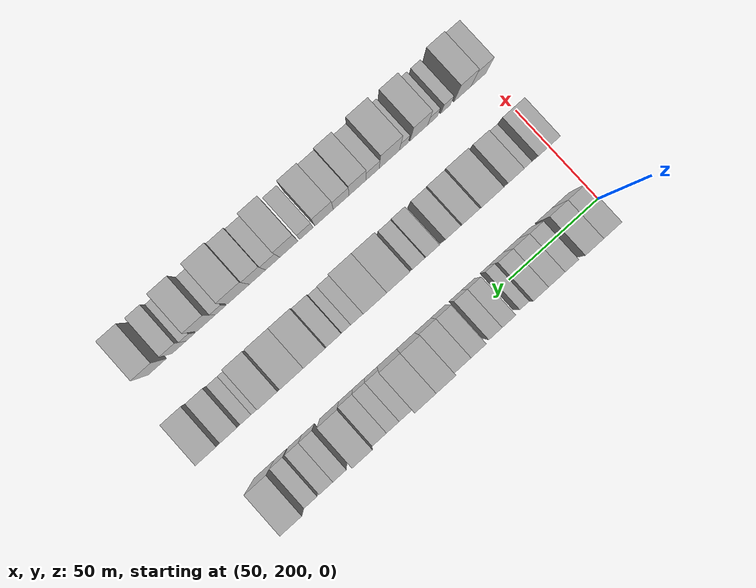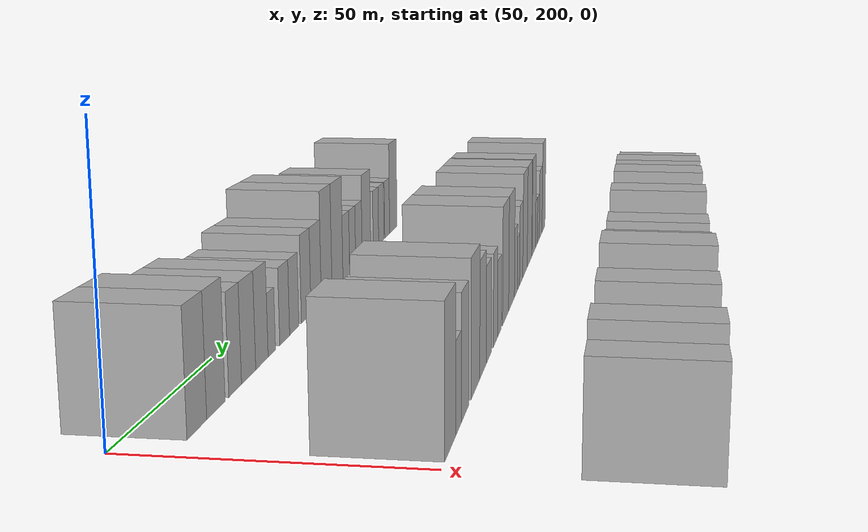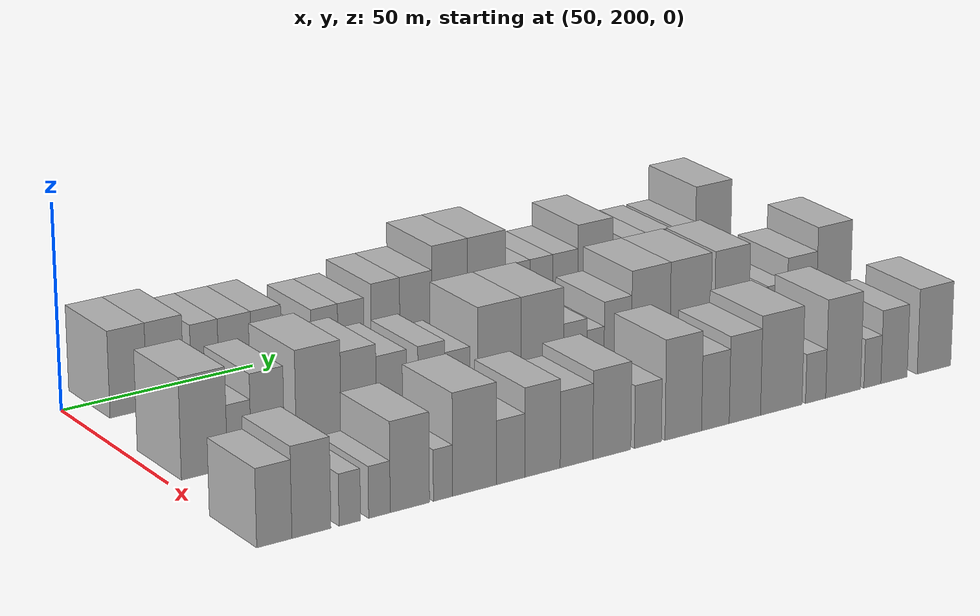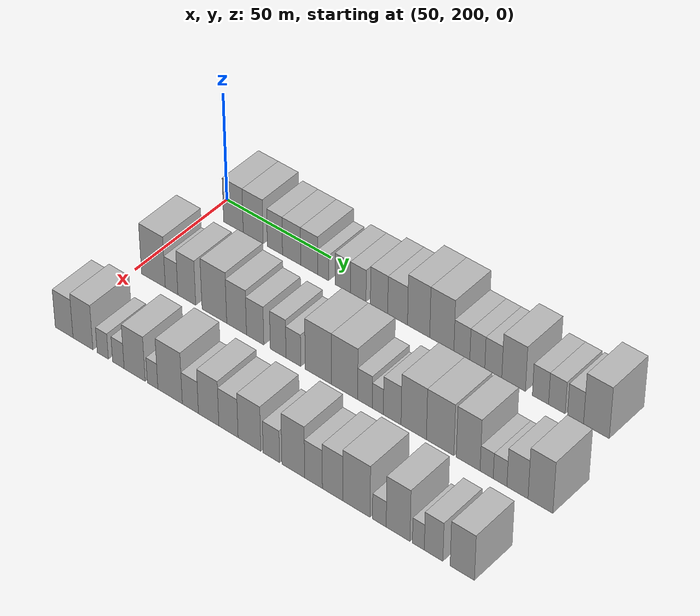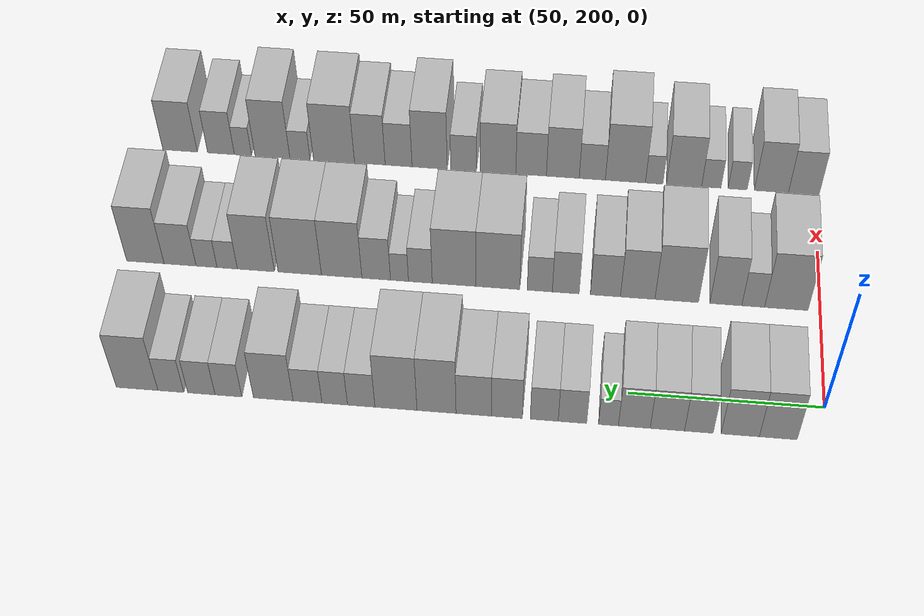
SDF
<sdf version="1.6">
 <world name="default">
  <model name="building_57">
   <static>1</static>
   <pose>50.0000 211.8894 0 0.000000 0.000000 0.000000</pose>
   <link name="link">
    <pose>0 0 10.50 0 0 0</pose>
    <collision name="collision"><geometry><box><size>20.0000 9.4863 21.0000</size></box></geometry></collision>
    <visual name="visual">
     <cast_shadows>0</cast_shadows>
     <geometry><box><size>20.0000 9.4863 21.0000</size></box></geometry>
     <material>
      <script>
       <uri>model://HANNAS_wall/materials/scripts</uri>
       <uri>model://HANNAS_wall/materials/textures</uri>
       <name>vrc/HANNAS_wall</name>
      </script>
     </material>
    </visual>
   </link>
  </model>
  <model name="building_58">
   <static>1</static>
   <pose>50.0000 221.4243 0 0.000000 0.000000 0.000000</pose>
   <link name="link">
    <pose>0 0 10.50 0 0 0</pose>
    <collision name="collision"><geometry><box><size>20.0000 9.5835 21.0000</size></box></geometry></collision>
    <visual name="visual">
     <cast_shadows>0</cast_shadows>
     <geometry><box><size>20.0000 9.5835 21.0000</size></box></geometry>
     <material>
      <script>
       <uri>model://HANNAS_wall/materials/scripts</uri>
       <uri>model://HANNAS_wall/materials/textures</uri>
       <name>vrc/HANNAS_wall</name>
      </script>
     </material>
    </visual>
   </link>
  </model>
  <model name="building_59">
   <static>1</static>
   <pose>50.0000 231.8241 0 0.000000 0.000000 0.000000</pose>
   <link name="link">
    <pose>0 0 9.00 0 0 0</pose>
    <collision name="collision"><geometry><box><size>20.0000 7.2160 18.0000</size></box></geometry></collision>
    <visual name="visual">
     <cast_shadows>0</cast_shadows>
     <geometry><box><size>20.0000 7.2160 18.0000</size></box></geometry>
     <material>
      <script>
       <uri>model://HANNAS_wall/materials/scripts</uri>
       <uri>model://HANNAS_wall/materials/textures</uri>
       <name>vrc/HANNAS_wall</name>
      </script>
     </material>
    </visual>
   </link>
  </model>
  <model name="building_60">
   <static>1</static>
   <pose>50.0000 239.7580 0 0.000000 0.000000 0.000000</pose>
   <link name="link">
    <pose>0 0 9.00 0 0 0</pose>
    <collision name="collision"><geometry><box><size>20.0000 8.6519 18.0000</size></box></geometry></collision>
    <visual name="visual">
     <cast_shadows>0</cast_shadows>
     <geometry><box><size>20.0000 8.6519 18.0000</size></box></geometry>
     <material>
      <script>
       <uri>model://HANNAS_wall/materials/scripts</uri>
       <uri>model://HANNAS_wall/materials/textures</uri>
       <name>vrc/HANNAS_wall</name>
      </script>
     </material>
    </visual>
   </link>
  </model>
  <model name="building_61">
   <static>1</static>
   <pose>50.0000 248.1041 0 0.000000 0.000000 0.000000</pose>
   <link name="link">
    <pose>0 0 9.00 0 0 0</pose>
    <collision name="collision"><geometry><box><size>20.0000 8.0402 18.0000</size></box></geometry></collision>
    <visual name="visual">
     <cast_shadows>0</cast_shadows>
     <geometry><box><size>20.0000 8.0402 18.0000</size></box></geometry>
     <material>
      <script>
       <uri>model://HANNAS_wall/materials/scripts</uri>
       <uri>model://HANNAS_wall/materials/textures</uri>
       <name>vrc/HANNAS_wall</name>
      </script>
     </material>
    </visual>
   </link>
  </model>
  <model name="building_62">
   <static>1</static>
   <pose>50.0000 254.6286 0 0.000000 0.000000 0.000000</pose>
   <link name="link">
    <pose>0 0 6.00 0 0 0</pose>
    <collision name="collision"><geometry><box><size>20.0000 5.0088 12.0000</size></box></geometry></collision>
    <visual name="visual">
     <cast_shadows>0</cast_shadows>
     <geometry><box><size>20.0000 5.0088 12.0000</size></box></geometry>
     <material>
      <script>
       <uri>model://HANNAS_wall/materials/scripts</uri>
       <uri>model://HANNAS_wall/materials/textures</uri>
       <name>vrc/HANNAS_wall</name>
      </script>
     </material>
    </visual>
   </link>
  </model>
  <model name="building_63">
   <static>1</static>
   <pose>50.0000 263.7441 0 0.000000 0.000000 0.000000</pose>
   <link name="link">
    <pose>0 0 7.50 0 0 0</pose>
    <collision name="collision"><geometry><box><size>20.0000 7.2222 15.0000</size></box></geometry></collision>
    <visual name="visual">
     <cast_shadows>0</cast_shadows>
     <geometry><box><size>20.0000 7.2222 15.0000</size></box></geometry>
     <material>
      <script>
       <uri>model://HANNAS_wall/materials/scripts</uri>
       <uri>model://HANNAS_wall/materials/textures</uri>
       <name>vrc/HANNAS_wall</name>
      </script>
     </material>
    </visual>
   </link>
  </model>
  <model name="building_64">
   <static>1</static>
   <pose>50.0000 270.9113 0 0.000000 0.000000 0.000000</pose>
   <link name="link">
    <pose>0 0 7.50 0 0 0</pose>
    <collision name="collision"><geometry><box><size>20.0000 7.1123 15.0000</size></box></geometry></collision>
    <visual name="visual">
     <cast_shadows>0</cast_shadows>
     <geometry><box><size>20.0000 7.1123 15.0000</size></box></geometry>
     <material>
      <script>
       <uri>model://HANNAS_wall/materials/scripts</uri>
       <uri>model://HANNAS_wall/materials/textures</uri>
       <name>vrc/HANNAS_wall</name>
      </script>
     </material>
    </visual>
   </link>
  </model>
  <model name="building_65">
   <static>1</static>
   <pose>50.0000 280.4324 0 0.000000 0.000000 0.000000</pose>
   <link name="link">
    <pose>0 0 9.00 0 0 0</pose>
    <collision name="collision"><geometry><box><size>20.0000 7.9298 18.0000</size></box></geometry></collision>
    <visual name="visual">
     <cast_shadows>0</cast_shadows>
     <geometry><box><size>20.0000 7.9298 18.0000</size></box></geometry>
     <material>
      <script>
       <uri>model://HANNAS_wall/materials/scripts</uri>
       <uri>model://HANNAS_wall/materials/textures</uri>
       <name>vrc/HANNAS_wall</name>
      </script>
     </material>
    </visual>
   </link>
  </model>
  <model name="building_66">
   <static>1</static>
   <pose>50.0000 288.8863 0 0.000000 0.000000 0.000000</pose>
   <link name="link">
    <pose>0 0 9.00 0 0 0</pose>
    <collision name="collision"><geometry><box><size>20.0000 8.9780 18.0000</size></box></geometry></collision>
    <visual name="visual">
     <cast_shadows>0</cast_shadows>
     <geometry><box><size>20.0000 8.9780 18.0000</size></box></geometry>
     <material>
      <script>
       <uri>model://HANNAS_wall/materials/scripts</uri>
       <uri>model://HANNAS_wall/materials/textures</uri>
       <name>vrc/HANNAS_wall</name>
      </script>
     </material>
    </visual>
   </link>
  </model>
  <model name="building_67">
   <static>1</static>
   <pose>50.0000 298.3716 0 0.000000 0.000000 0.000000</pose>
   <link name="link">
    <pose>0 0 12.00 0 0 0</pose>
    <collision name="collision"><geometry><box><size>20.0000 9.9928 24.0000</size></box></geometry></collision>
    <visual name="visual">
     <cast_shadows>0</cast_shadows>
     <geometry><box><size>20.0000 9.9928 24.0000</size></box></geometry>
     <material>
      <script>
       <uri>model://HANNAS_wall/materials/scripts</uri>
       <uri>model://HANNAS_wall/materials/textures</uri>
       <name>vrc/HANNAS_wall</name>
      </script>
     </material>
    </visual>
   </link>
  </model>
  <model name="building_68">
   <static>1</static>
   <pose>50.0000 308.7634 0 0.000000 0.000000 0.000000</pose>
   <link name="link">
    <pose>0 0 12.00 0 0 0</pose>
    <collision name="collision"><geometry><box><size>20.0000 10.7906 24.0000</size></box></geometry></collision>
    <visual name="visual">
     <cast_shadows>0</cast_shadows>
     <geometry><box><size>20.0000 10.7906 24.0000</size></box></geometry>
     <material>
      <script>
       <uri>model://HANNAS_wall/materials/scripts</uri>
       <uri>model://HANNAS_wall/materials/textures</uri>
       <name>vrc/HANNAS_wall</name>
      </script>
     </material>
    </visual>
   </link>
  </model>
  <model name="building_69">
   <static>1</static>
   <pose>50.0000 317.6834 0 0.000000 0.000000 0.000000</pose>
   <link name="link">
    <pose>0 0 7.50 0 0 0</pose>
    <collision name="collision"><geometry><box><size>20.0000 7.0496 15.0000</size></box></geometry></collision>
    <visual name="visual">
     <cast_shadows>0</cast_shadows>
     <geometry><box><size>20.0000 7.0496 15.0000</size></box></geometry>
     <material>
      <script>
       <uri>model://HANNAS_wall/materials/scripts</uri>
       <uri>model://HANNAS_wall/materials/textures</uri>
       <name>vrc/HANNAS_wall</name>
      </script>
     </material>
    </visual>
   </link>
  </model>
  <model name="building_70">
   <static>1</static>
   <pose>50.0000 324.4984 0 0.000000 0.000000 0.000000</pose>
   <link name="link">
    <pose>0 0 7.50 0 0 0</pose>
    <collision name="collision"><geometry><box><size>20.0000 6.5803 15.0000</size></box></geometry></collision>
    <visual name="visual">
     <cast_shadows>0</cast_shadows>
     <geometry><box><size>20.0000 6.5803 15.0000</size></box></geometry>
     <material>
      <script>
       <uri>model://HANNAS_wall/materials/scripts</uri>
       <uri>model://HANNAS_wall/materials/textures</uri>
       <name>vrc/HANNAS_wall</name>
      </script>
     </material>
    </visual>
   </link>
  </model>
  <model name="building_71">
   <static>1</static>
   <pose>50.0000 331.5047 0 0.000000 0.000000 0.000000</pose>
   <link name="link">
    <pose>0 0 7.50 0 0 0</pose>
    <collision name="collision"><geometry><box><size>20.0000 7.4324 15.0000</size></box></geometry></collision>
    <visual name="visual">
     <cast_shadows>0</cast_shadows>
     <geometry><box><size>20.0000 7.4324 15.0000</size></box></geometry>
     <material>
      <script>
       <uri>model://HANNAS_wall/materials/scripts</uri>
       <uri>model://HANNAS_wall/materials/textures</uri>
       <name>vrc/HANNAS_wall</name>
      </script>
     </material>
    </visual>
   </link>
  </model>
  <model name="building_72">
   <static>1</static>
   <pose>50.0000 340.3545 0 0.000000 0.000000 0.000000</pose>
   <link name="link">
    <pose>0 0 10.50 0 0 0</pose>
    <collision name="collision"><geometry><box><size>20.0000 10.2673 21.0000</size></box></geometry></collision>
    <visual name="visual">
     <cast_shadows>0</cast_shadows>
     <geometry><box><size>20.0000 10.2673 21.0000</size></box></geometry>
     <material>
      <script>
       <uri>model://HANNAS_wall/materials/scripts</uri>
       <uri>model://HANNAS_wall/materials/textures</uri>
       <name>vrc/HANNAS_wall</name>
      </script>
     </material>
    </visual>
   </link>
  </model>
  <model name="building_73">
   <static>1</static>
   <pose>50.0000 351.9696 0 0.000000 0.000000 0.000000</pose>
   <link name="link">
    <pose>0 0 7.50 0 0 0</pose>
    <collision name="collision"><geometry><box><size>20.0000 6.9628 15.0000</size></box></geometry></collision>
    <visual name="visual">
     <cast_shadows>0</cast_shadows>
     <geometry><box><size>20.0000 6.9628 15.0000</size></box></geometry>
     <material>
      <script>
       <uri>model://HANNAS_wall/materials/scripts</uri>
       <uri>model://HANNAS_wall/materials/textures</uri>
       <name>vrc/HANNAS_wall</name>
      </script>
     </material>
    </visual>
   </link>
  </model>
  <model name="building_74">
   <static>1</static>
   <pose>50.0000 359.0020 0 0.000000 0.000000 0.000000</pose>
   <link name="link">
    <pose>0 0 7.50 0 0 0</pose>
    <collision name="collision"><geometry><box><size>20.0000 7.1021 15.0000</size></box></geometry></collision>
    <visual name="visual">
     <cast_shadows>0</cast_shadows>
     <geometry><box><size>20.0000 7.1021 15.0000</size></box></geometry>
     <material>
      <script>
       <uri>model://HANNAS_wall/materials/scripts</uri>
       <uri>model://HANNAS_wall/materials/textures</uri>
       <name>vrc/HANNAS_wall</name>
      </script>
     </material>
    </visual>
   </link>
  </model>
  <model name="building_75">
   <static>1</static>
   <pose>50.0000 366.9369 0 0.000000 0.000000 0.000000</pose>
   <link name="link">
    <pose>0 0 7.50 0 0 0</pose>
    <collision name="collision"><geometry><box><size>20.0000 6.7676 15.0000</size></box></geometry></collision>
    <visual name="visual">
     <cast_shadows>0</cast_shadows>
     <geometry><box><size>20.0000 6.7676 15.0000</size></box></geometry>
     <material>
      <script>
       <uri>model://HANNAS_wall/materials/scripts</uri>
       <uri>model://HANNAS_wall/materials/textures</uri>
       <name>vrc/HANNAS_wall</name>
      </script>
     </material>
    </visual>
   </link>
  </model>
  <model name="building_76">
   <static>1</static>
   <pose>50.0000 375.7432 0 0.000000 0.000000 0.000000</pose>
   <link name="link">
    <pose>0 0 12.00 0 0 0</pose>
    <collision name="collision"><geometry><box><size>20.0000 10.8451 24.0000</size></box></geometry></collision>
    <visual name="visual">
     <cast_shadows>0</cast_shadows>
     <geometry><box><size>20.0000 10.8451 24.0000</size></box></geometry>
     <material>
      <script>
       <uri>model://HANNAS_wall/materials/scripts</uri>
       <uri>model://HANNAS_wall/materials/textures</uri>
       <name>vrc/HANNAS_wall</name>
      </script>
     </material>
    </visual>
   </link>
  </model>
  <model name="building_141">
   <static>1</static>
   <pose>90.0000 208.9624 0 0.000000 0.000000 0.000000</pose>
   <link name="link">
    <pose>0 0 12.00 0 0 0</pose>
    <collision name="collision"><geometry><box><size>20.0000 11.4992 24.0000</size></box></geometry></collision>
    <visual name="visual">
     <cast_shadows>0</cast_shadows>
     <geometry><box><size>20.0000 11.4992 24.0000</size></box></geometry>
     <material>
      <script>
       <uri>model://HANNAS_wall/materials/scripts</uri>
       <uri>model://HANNAS_wall/materials/textures</uri>
       <name>vrc/HANNAS_wall</name>
      </script>
     </material>
    </visual>
   </link>
  </model>
  <model name="building_142">
   <static>1</static>
   <pose>90.0000 217.7320 0 0.000000 0.000000 0.000000</pose>
   <link name="link">
    <pose>0 0 7.50 0 0 0</pose>
    <collision name="collision"><geometry><box><size>20.0000 6.0401 15.0000</size></box></geometry></collision>
    <visual name="visual">
     <cast_shadows>0</cast_shadows>
     <geometry><box><size>20.0000 6.0401 15.0000</size></box></geometry>
     <material>
      <script>
       <uri>model://HANNAS_wall/materials/scripts</uri>
       <uri>model://HANNAS_wall/materials/textures</uri>
       <name>vrc/HANNAS_wall</name>
      </script>
     </material>
    </visual>
   </link>
  </model>
  <model name="building_143">
   <static>1</static>
   <pose>90.0000 225.0010 0 0.000000 0.000000 0.000000</pose>
   <link name="link">
    <pose>0 0 10.50 0 0 0</pose>
    <collision name="collision"><geometry><box><size>20.0000 8.4979 21.0000</size></box></geometry></collision>
    <visual name="visual">
     <cast_shadows>0</cast_shadows>
     <geometry><box><size>20.0000 8.4979 21.0000</size></box></geometry>
     <material>
      <script>
       <uri>model://HANNAS_wall/materials/scripts</uri>
       <uri>model://HANNAS_wall/materials/textures</uri>
       <name>vrc/HANNAS_wall</name>
      </script>
     </material>
    </visual>
   </link>
  </model>
  <model name="building_144">
   <static>1</static>
   <pose>90.0000 238.0697 0 0.000000 0.000000 0.000000</pose>
   <link name="link">
    <pose>0 0 12.00 0 0 0</pose>
    <collision name="collision"><geometry><box><size>20.0000 11.6396 24.0000</size></box></geometry></collision>
    <visual name="visual">
     <cast_shadows>0</cast_shadows>
     <geometry><box><size>20.0000 11.6396 24.0000</size></box></geometry>
     <material>
      <script>
       <uri>model://HANNAS_wall/materials/scripts</uri>
       <uri>model://HANNAS_wall/materials/textures</uri>
       <name>vrc/HANNAS_wall</name>
      </script>
     </material>
    </visual>
   </link>
  </model>
  <model name="building_145">
   <static>1</static>
   <pose>90.0000 248.5030 0 0.000000 0.000000 0.000000</pose>
   <link name="link">
    <pose>0 0 10.50 0 0 0</pose>
    <collision name="collision"><geometry><box><size>20.0000 9.2269 21.0000</size></box></geometry></collision>
    <visual name="visual">
     <cast_shadows>0</cast_shadows>
     <geometry><box><size>20.0000 9.2269 21.0000</size></box></geometry>
     <material>
      <script>
       <uri>model://HANNAS_wall/materials/scripts</uri>
       <uri>model://HANNAS_wall/materials/textures</uri>
       <name>vrc/HANNAS_wall</name>
      </script>
     </material>
    </visual>
   </link>
  </model>
  <model name="building_146">
   <static>1</static>
   <pose>90.0000 257.1353 0 0.000000 0.000000 0.000000</pose>
   <link name="link">
    <pose>0 0 9.00 0 0 0</pose>
    <collision name="collision"><geometry><box><size>20.0000 8.0377 18.0000</size></box></geometry></collision>
    <visual name="visual">
     <cast_shadows>0</cast_shadows>
     <geometry><box><size>20.0000 8.0377 18.0000</size></box></geometry>
     <material>
      <script>
       <uri>model://HANNAS_wall/materials/scripts</uri>
       <uri>model://HANNAS_wall/materials/textures</uri>
       <name>vrc/HANNAS_wall</name>
      </script>
     </material>
    </visual>
   </link>
  </model>
  <model name="building_147">
   <static>1</static>
   <pose>90.0000 267.7549 0 0.000000 0.000000 0.000000</pose>
   <link name="link">
    <pose>0 0 9.00 0 0 0</pose>
    <collision name="collision"><geometry><box><size>20.0000 7.2015 18.0000</size></box></geometry></collision>
    <visual name="visual">
     <cast_shadows>0</cast_shadows>
     <geometry><box><size>20.0000 7.2015 18.0000</size></box></geometry>
     <material>
      <script>
       <uri>model://HANNAS_wall/materials/scripts</uri>
       <uri>model://HANNAS_wall/materials/textures</uri>
       <name>vrc/HANNAS_wall</name>
      </script>
     </material>
    </visual>
   </link>
  </model>
  <model name="building_148">
   <static>1</static>
   <pose>90.0000 274.7391 0 0.000000 0.000000 0.000000</pose>
   <link name="link">
    <pose>0 0 7.50 0 0 0</pose>
    <collision name="collision"><geometry><box><size>20.0000 6.7667 15.0000</size></box></geometry></collision>
    <visual name="visual">
     <cast_shadows>0</cast_shadows>
     <geometry><box><size>20.0000 6.7667 15.0000</size></box></geometry>
     <material>
      <script>
       <uri>model://HANNAS_wall/materials/scripts</uri>
       <uri>model://HANNAS_wall/materials/textures</uri>
       <name>vrc/HANNAS_wall</name>
      </script>
     </material>
    </visual>
   </link>
  </model>
  <model name="building_149">
   <static>1</static>
   <pose>90.0000 286.0296 0 0.000000 0.000000 0.000000</pose>
   <link name="link">
    <pose>0 0 12.00 0 0 0</pose>
    <collision name="collision"><geometry><box><size>20.0000 11.8143 24.0000</size></box></geometry></collision>
    <visual name="visual">
     <cast_shadows>0</cast_shadows>
     <geometry><box><size>20.0000 11.8143 24.0000</size></box></geometry>
     <material>
      <script>
       <uri>model://HANNAS_wall/materials/scripts</uri>
       <uri>model://HANNAS_wall/materials/textures</uri>
       <name>vrc/HANNAS_wall</name>
      </script>
     </material>
    </visual>
   </link>
  </model>
  <model name="building_150">
   <static>1</static>
   <pose>90.0000 297.8479 0 0.000000 0.000000 0.000000</pose>
   <link name="link">
    <pose>0 0 12.00 0 0 0</pose>
    <collision name="collision"><geometry><box><size>20.0000 11.8223 24.0000</size></box></geometry></collision>
    <visual name="visual">
     <cast_shadows>0</cast_shadows>
     <geometry><box><size>20.0000 11.8223 24.0000</size></box></geometry>
     <material>
      <script>
       <uri>model://HANNAS_wall/materials/scripts</uri>
       <uri>model://HANNAS_wall/materials/textures</uri>
       <name>vrc/HANNAS_wall</name>
      </script>
     </material>
    </visual>
   </link>
  </model>
  <model name="building_151">
   <static>1</static>
   <pose>90.0000 306.9899 0 0.000000 0.000000 0.000000</pose>
   <link name="link">
    <pose>0 0 7.50 0 0 0</pose>
    <collision name="collision"><geometry><box><size>20.0000 6.4617 15.0000</size></box></geometry></collision>
    <visual name="visual">
     <cast_shadows>0</cast_shadows>
     <geometry><box><size>20.0000 6.4617 15.0000</size></box></geometry>
     <material>
      <script>
       <uri>model://HANNAS_wall/materials/scripts</uri>
       <uri>model://HANNAS_wall/materials/textures</uri>
       <name>vrc/HANNAS_wall</name>
      </script>
     </material>
    </visual>
   </link>
  </model>
  <model name="building_152">
   <static>1</static>
   <pose>90.0000 312.6540 0 0.000000 0.000000 0.000000</pose>
   <link name="link">
    <pose>0 0 6.00 0 0 0</pose>
    <collision name="collision"><geometry><box><size>20.0000 4.8664 12.0000</size></box></geometry></collision>
    <visual name="visual">
     <cast_shadows>0</cast_shadows>
     <geometry><box><size>20.0000 4.8664 12.0000</size></box></geometry>
     <material>
      <script>
       <uri>model://HANNAS_wall/materials/scripts</uri>
       <uri>model://HANNAS_wall/materials/textures</uri>
       <name>vrc/HANNAS_wall</name>
      </script>
     </material>
    </visual>
   </link>
  </model>
  <model name="building_153">
   <static>1</static>
   <pose>90.0000 318.9699 0 0.000000 0.000000 0.000000</pose>
   <link name="link">
    <pose>0 0 9.00 0 0 0</pose>
    <collision name="collision"><geometry><box><size>20.0000 7.7654 18.0000</size></box></geometry></collision>
    <visual name="visual">
     <cast_shadows>0</cast_shadows>
     <geometry><box><size>20.0000 7.7654 18.0000</size></box></geometry>
     <material>
      <script>
       <uri>model://HANNAS_wall/materials/scripts</uri>
       <uri>model://HANNAS_wall/materials/textures</uri>
       <name>vrc/HANNAS_wall</name>
      </script>
     </material>
    </visual>
   </link>
  </model>
  <model name="building_154">
   <static>1</static>
   <pose>90.0000 328.3681 0 0.000000 0.000000 0.000000</pose>
   <link name="link">
    <pose>0 0 12.00 0 0 0</pose>
    <collision name="collision"><geometry><box><size>20.0000 11.0311 24.0000</size></box></geometry></collision>
    <visual name="visual">
     <cast_shadows>0</cast_shadows>
     <geometry><box><size>20.0000 11.0311 24.0000</size></box></geometry>
     <material>
      <script>
       <uri>model://HANNAS_wall/materials/scripts</uri>
       <uri>model://HANNAS_wall/materials/textures</uri>
       <name>vrc/HANNAS_wall</name>
      </script>
     </material>
    </visual>
   </link>
  </model>
  <model name="building_155">
   <static>1</static>
   <pose>90.0000 339.8160 0 0.000000 0.000000 0.000000</pose>
   <link name="link">
    <pose>0 0 12.00 0 0 0</pose>
    <collision name="collision"><geometry><box><size>20.0000 11.8647 24.0000</size></box></geometry></collision>
    <visual name="visual">
     <cast_shadows>0</cast_shadows>
     <geometry><box><size>20.0000 11.8647 24.0000</size></box></geometry>
     <material>
      <script>
       <uri>model://HANNAS_wall/materials/scripts</uri>
       <uri>model://HANNAS_wall/materials/textures</uri>
       <name>vrc/HANNAS_wall</name>
      </script>
     </material>
    </visual>
   </link>
  </model>
  <model name="building_156">
   <static>1</static>
   <pose>90.0000 351.8295 0 0.000000 0.000000 0.000000</pose>
   <link name="link">
    <pose>0 0 12.00 0 0 0</pose>
    <collision name="collision"><geometry><box><size>20.0000 10.1623 24.0000</size></box></geometry></collision>
    <visual name="visual">
     <cast_shadows>0</cast_shadows>
     <geometry><box><size>20.0000 10.1623 24.0000</size></box></geometry>
     <material>
      <script>
       <uri>model://HANNAS_wall/materials/scripts</uri>
       <uri>model://HANNAS_wall/materials/textures</uri>
       <name>vrc/HANNAS_wall</name>
      </script>
     </material>
    </visual>
   </link>
  </model>
  <model name="building_157">
   <static>1</static>
   <pose>90.0000 359.6980 0 0.000000 0.000000 0.000000</pose>
   <link name="link">
    <pose>0 0 6.00 0 0 0</pose>
    <collision name="collision"><geometry><box><size>20.0000 5.5747 12.0000</size></box></geometry></collision>
    <visual name="visual">
     <cast_shadows>0</cast_shadows>
     <geometry><box><size>20.0000 5.5747 12.0000</size></box></geometry>
     <material>
      <script>
       <uri>model://HANNAS_wall/materials/scripts</uri>
       <uri>model://HANNAS_wall/materials/textures</uri>
       <name>vrc/HANNAS_wall</name>
      </script>
     </material>
    </visual>
   </link>
  </model>
  <model name="building_158">
   <static>1</static>
   <pose>90.0000 365.3645 0 0.000000 0.000000 0.000000</pose>
   <link name="link">
    <pose>0 0 6.00 0 0 0</pose>
    <collision name="collision"><geometry><box><size>20.0000 5.7582 12.0000</size></box></geometry></collision>
    <visual name="visual">
     <cast_shadows>0</cast_shadows>
     <geometry><box><size>20.0000 5.7582 12.0000</size></box></geometry>
     <material>
      <script>
       <uri>model://HANNAS_wall/materials/scripts</uri>
       <uri>model://HANNAS_wall/materials/textures</uri>
       <name>vrc/HANNAS_wall</name>
      </script>
     </material>
    </visual>
   </link>
  </model>
  <model name="building_159">
   <static>1</static>
   <pose>90.0000 372.6610 0 0.000000 0.000000 0.000000</pose>
   <link name="link">
    <pose>0 0 9.00 0 0 0</pose>
    <collision name="collision"><geometry><box><size>20.0000 8.8347 18.0000</size></box></geometry></collision>
    <visual name="visual">
     <cast_shadows>0</cast_shadows>
     <geometry><box><size>20.0000 8.8347 18.0000</size></box></geometry>
     <material>
      <script>
       <uri>model://HANNAS_wall/materials/scripts</uri>
       <uri>model://HANNAS_wall/materials/textures</uri>
       <name>vrc/HANNAS_wall</name>
      </script>
     </material>
    </visual>
   </link>
  </model>
  <model name="building_160">
   <static>1</static>
   <pose>90.0000 382.2300 0 0.000000 0.000000 0.000000</pose>
   <link name="link">
    <pose>0 0 12.00 0 0 0</pose>
    <collision name="collision"><geometry><box><size>20.0000 10.3033 24.0000</size></box></geometry></collision>
    <visual name="visual">
     <cast_shadows>0</cast_shadows>
     <geometry><box><size>20.0000 10.3033 24.0000</size></box></geometry>
     <material>
      <script>
       <uri>model://HANNAS_wall/materials/scripts</uri>
       <uri>model://HANNAS_wall/materials/textures</uri>
       <name>vrc/HANNAS_wall</name>
      </script>
     </material>
    </visual>
   </link>
  </model>
  <model name="building_226">
   <static>1</static>
   <pose>130.0000 203.1307 0 0.000000 0.000000 0.000000</pose>
   <link name="link">
    <pose>0 0 9.00 0 0 0</pose>
    <collision name="collision"><geometry><box><size>20.0000 8.5609 18.0000</size></box></geometry></collision>
    <visual name="visual">
     <cast_shadows>0</cast_shadows>
     <geometry><box><size>20.0000 8.5609 18.0000</size></box></geometry>
     <material>
      <script>
       <uri>model://HANNAS_wall/materials/scripts</uri>
       <uri>model://HANNAS_wall/materials/textures</uri>
       <name>vrc/HANNAS_wall</name>
      </script>
     </material>
    </visual>
   </link>
  </model>
  <model name="building_227">
   <static>1</static>
   <pose>130.0000 212.1909 0 0.000000 0.000000 0.000000</pose>
   <link name="link">
    <pose>0 0 10.50 0 0 0</pose>
    <collision name="collision"><geometry><box><size>20.0000 9.5594 21.0000</size></box></geometry></collision>
    <visual name="visual">
     <cast_shadows>0</cast_shadows>
     <geometry><box><size>20.0000 9.5594 21.0000</size></box></geometry>
     <material>
      <script>
       <uri>model://HANNAS_wall/materials/scripts</uri>
       <uri>model://HANNAS_wall/materials/textures</uri>
       <name>vrc/HANNAS_wall</name>
      </script>
     </material>
    </visual>
   </link>
  </model>
  <model name="building_228">
   <static>1</static>
   <pose>130.0000 221.6430 0 0.000000 0.000000 0.000000</pose>
   <link name="link">
    <pose>0 0 6.00 0 0 0</pose>
    <collision name="collision"><geometry><box><size>20.0000 5.3449 12.0000</size></box></geometry></collision>
    <visual name="visual">
     <cast_shadows>0</cast_shadows>
     <geometry><box><size>20.0000 5.3449 12.0000</size></box></geometry>
     <material>
      <script>
       <uri>model://HANNAS_wall/materials/scripts</uri>
       <uri>model://HANNAS_wall/materials/textures</uri>
       <name>vrc/HANNAS_wall</name>
      </script>
     </material>
    </visual>
   </link>
  </model>
  <model name="building_229">
   <static>1</static>
   <pose>130.0000 229.0295 0 0.000000 0.000000 0.000000</pose>
   <link name="link">
    <pose>0 0 6.00 0 0 0</pose>
    <collision name="collision"><geometry><box><size>20.0000 5.4280 12.0000</size></box></geometry></collision>
    <visual name="visual">
     <cast_shadows>0</cast_shadows>
     <geometry><box><size>20.0000 5.4280 12.0000</size></box></geometry>
     <material>
      <script>
       <uri>model://HANNAS_wall/materials/scripts</uri>
       <uri>model://HANNAS_wall/materials/textures</uri>
       <name>vrc/HANNAS_wall</name>
      </script>
     </material>
    </visual>
   </link>
  </model>
  <model name="building_230">
   <static>1</static>
   <pose>130.0000 236.6936 0 0.000000 0.000000 0.000000</pose>
   <link name="link">
    <pose>0 0 10.50 0 0 0</pose>
    <collision name="collision"><geometry><box><size>20.0000 9.9002 21.0000</size></box></geometry></collision>
    <visual name="visual">
     <cast_shadows>0</cast_shadows>
     <geometry><box><size>20.0000 9.9002 21.0000</size></box></geometry>
     <material>
      <script>
       <uri>model://HANNAS_wall/materials/scripts</uri>
       <uri>model://HANNAS_wall/materials/textures</uri>
       <name>vrc/HANNAS_wall</name>
      </script>
     </material>
    </visual>
   </link>
  </model>
  <model name="building_231">
   <static>1</static>
   <pose>130.0000 245.0986 0 0.000000 0.000000 0.000000</pose>
   <link name="link">
    <pose>0 0 6.00 0 0 0</pose>
    <collision name="collision"><geometry><box><size>20.0000 4.9098 12.0000</size></box></geometry></collision>
    <visual name="visual">
     <cast_shadows>0</cast_shadows>
     <geometry><box><size>20.0000 4.9098 12.0000</size></box></geometry>
     <material>
      <script>
       <uri>model://HANNAS_wall/materials/scripts</uri>
       <uri>model://HANNAS_wall/materials/textures</uri>
       <name>vrc/HANNAS_wall</name>
      </script>
     </material>
    </visual>
   </link>
  </model>
  <model name="building_232">
   <static>1</static>
   <pose>130.0000 253.2178 0 0.000000 0.000000 0.000000</pose>
   <link name="link">
    <pose>0 0 12.00 0 0 0</pose>
    <collision name="collision"><geometry><box><size>20.0000 11.3285 24.0000</size></box></geometry></collision>
    <visual name="visual">
     <cast_shadows>0</cast_shadows>
     <geometry><box><size>20.0000 11.3285 24.0000</size></box></geometry>
     <material>
      <script>
       <uri>model://HANNAS_wall/materials/scripts</uri>
       <uri>model://HANNAS_wall/materials/textures</uri>
       <name>vrc/HANNAS_wall</name>
      </script>
     </material>
    </visual>
   </link>
  </model>
  <model name="building_233">
   <static>1</static>
   <pose>130.0000 262.5715 0 0.000000 0.000000 0.000000</pose>
   <link name="link">
    <pose>0 0 7.50 0 0 0</pose>
    <collision name="collision"><geometry><box><size>20.0000 7.3790 15.0000</size></box></geometry></collision>
    <visual name="visual">
     <cast_shadows>0</cast_shadows>
     <geometry><box><size>20.0000 7.3790 15.0000</size></box></geometry>
     <material>
      <script>
       <uri>model://HANNAS_wall/materials/scripts</uri>
       <uri>model://HANNAS_wall/materials/textures</uri>
       <name>vrc/HANNAS_wall</name>
      </script>
     </material>
    </visual>
   </link>
  </model>
  <model name="building_234">
   <static>1</static>
   <pose>130.0000 270.9138 0 0.000000 0.000000 0.000000</pose>
   <link name="link">
    <pose>0 0 10.50 0 0 0</pose>
    <collision name="collision"><geometry><box><size>20.0000 9.3056 21.0000</size></box></geometry></collision>
    <visual name="visual">
     <cast_shadows>0</cast_shadows>
     <geometry><box><size>20.0000 9.3056 21.0000</size></box></geometry>
     <material>
      <script>
       <uri>model://HANNAS_wall/materials/scripts</uri>
       <uri>model://HANNAS_wall/materials/textures</uri>
       <name>vrc/HANNAS_wall</name>
      </script>
     </material>
    </visual>
   </link>
  </model>
  <model name="building_235">
   <static>1</static>
   <pose>130.0000 279.9120 0 0.000000 0.000000 0.000000</pose>
   <link name="link">
    <pose>0 0 9.00 0 0 0</pose>
    <collision name="collision"><geometry><box><size>20.0000 8.6906 18.0000</size></box></geometry></collision>
    <visual name="visual">
     <cast_shadows>0</cast_shadows>
     <geometry><box><size>20.0000 8.6906 18.0000</size></box></geometry>
     <material>
      <script>
       <uri>model://HANNAS_wall/materials/scripts</uri>
       <uri>model://HANNAS_wall/materials/textures</uri>
       <name>vrc/HANNAS_wall</name>
      </script>
     </material>
    </visual>
   </link>
  </model>
  <model name="building_236">
   <static>1</static>
   <pose>130.0000 289.3610 0 0.000000 0.000000 0.000000</pose>
   <link name="link">
    <pose>0 0 10.50 0 0 0</pose>
    <collision name="collision"><geometry><box><size>20.0000 10.2075 21.0000</size></box></geometry></collision>
    <visual name="visual">
     <cast_shadows>0</cast_shadows>
     <geometry><box><size>20.0000 10.2075 21.0000</size></box></geometry>
     <material>
      <script>
       <uri>model://HANNAS_wall/materials/scripts</uri>
       <uri>model://HANNAS_wall/materials/textures</uri>
       <name>vrc/HANNAS_wall</name>
      </script>
     </material>
    </visual>
   </link>
  </model>
  <model name="building_237">
   <static>1</static>
   <pose>130.0000 299.1242 0 0.000000 0.000000 0.000000</pose>
   <link name="link">
    <pose>0 0 7.50 0 0 0</pose>
    <collision name="collision"><geometry><box><size>20.0000 7.3188 15.0000</size></box></geometry></collision>
    <visual name="visual">
     <cast_shadows>0</cast_shadows>
     <geometry><box><size>20.0000 7.3188 15.0000</size></box></geometry>
     <material>
      <script>
       <uri>model://HANNAS_wall/materials/scripts</uri>
       <uri>model://HANNAS_wall/materials/textures</uri>
       <name>vrc/HANNAS_wall</name>
      </script>
     </material>
    </visual>
   </link>
  </model>
  <model name="building_238">
   <static>1</static>
   <pose>130.0000 308.8115 0 0.000000 0.000000 0.000000</pose>
   <link name="link">
    <pose>0 0 12.00 0 0 0</pose>
    <collision name="collision"><geometry><box><size>20.0000 10.0560 24.0000</size></box></geometry></collision>
    <visual name="visual">
     <cast_shadows>0</cast_shadows>
     <geometry><box><size>20.0000 10.0560 24.0000</size></box></geometry>
     <material>
      <script>
       <uri>model://HANNAS_wall/materials/scripts</uri>
       <uri>model://HANNAS_wall/materials/textures</uri>
       <name>vrc/HANNAS_wall</name>
      </script>
     </material>
    </visual>
   </link>
  </model>
  <model name="building_239">
   <static>1</static>
   <pose>130.0000 317.6962 0 0.000000 0.000000 0.000000</pose>
   <link name="link">
    <pose>0 0 9.00 0 0 0</pose>
    <collision name="collision"><geometry><box><size>20.0000 7.7133 18.0000</size></box></geometry></collision>
    <visual name="visual">
     <cast_shadows>0</cast_shadows>
     <geometry><box><size>20.0000 7.7133 18.0000</size></box></geometry>
     <material>
      <script>
       <uri>model://HANNAS_wall/materials/scripts</uri>
       <uri>model://HANNAS_wall/materials/textures</uri>
       <name>vrc/HANNAS_wall</name>
      </script>
     </material>
    </visual>
   </link>
  </model>
  <model name="building_240">
   <static>1</static>
   <pose>130.0000 325.9578 0 0.000000 0.000000 0.000000</pose>
   <link name="link">
    <pose>0 0 10.50 0 0 0</pose>
    <collision name="collision"><geometry><box><size>20.0000 8.8100 21.0000</size></box></geometry></collision>
    <visual name="visual">
     <cast_shadows>0</cast_shadows>
     <geometry><box><size>20.0000 8.8100 21.0000</size></box></geometry>
     <material>
      <script>
       <uri>model://HANNAS_wall/materials/scripts</uri>
       <uri>model://HANNAS_wall/materials/textures</uri>
       <name>vrc/HANNAS_wall</name>
      </script>
     </material>
    </visual>
   </link>
  </model>
  <model name="building_241">
   <static>1</static>
   <pose>130.0000 336.2628 0 0.000000 0.000000 0.000000</pose>
   <link name="link">
    <pose>0 0 12.00 0 0 0</pose>
    <collision name="collision"><geometry><box><size>20.0000 11.8000 24.0000</size></box></geometry></collision>
    <visual name="visual">
     <cast_shadows>0</cast_shadows>
     <geometry><box><size>20.0000 11.8000 24.0000</size></box></geometry>
     <material>
      <script>
       <uri>model://HANNAS_wall/materials/scripts</uri>
       <uri>model://HANNAS_wall/materials/textures</uri>
       <name>vrc/HANNAS_wall</name>
      </script>
     </material>
    </visual>
   </link>
  </model>
  <model name="building_242">
   <static>1</static>
   <pose>130.0000 346.0682 0 0.000000 0.000000 0.000000</pose>
   <link name="link">
    <pose>0 0 6.00 0 0 0</pose>
    <collision name="collision"><geometry><box><size>20.0000 5.8108 12.0000</size></box></geometry></collision>
    <visual name="visual">
     <cast_shadows>0</cast_shadows>
     <geometry><box><size>20.0000 5.8108 12.0000</size></box></geometry>
     <material>
      <script>
       <uri>model://HANNAS_wall/materials/scripts</uri>
       <uri>model://HANNAS_wall/materials/textures</uri>
       <name>vrc/HANNAS_wall</name>
      </script>
     </material>
    </visual>
   </link>
  </model>
  <model name="building_243">
   <static>1</static>
   <pose>130.0000 354.0149 0 0.000000 0.000000 0.000000</pose>
   <link name="link">
    <pose>0 0 12.00 0 0 0</pose>
    <collision name="collision"><geometry><box><size>20.0000 10.0827 24.0000</size></box></geometry></collision>
    <visual name="visual">
     <cast_shadows>0</cast_shadows>
     <geometry><box><size>20.0000 10.0827 24.0000</size></box></geometry>
     <material>
      <script>
       <uri>model://HANNAS_wall/materials/scripts</uri>
       <uri>model://HANNAS_wall/materials/textures</uri>
       <name>vrc/HANNAS_wall</name>
      </script>
     </material>
    </visual>
   </link>
  </model>
  <model name="building_244">
   <static>1</static>
   <pose>130.0000 362.5427 0 0.000000 0.000000 0.000000</pose>
   <link name="link">
    <pose>0 0 6.00 0 0 0</pose>
    <collision name="collision"><geometry><box><size>20.0000 4.9729 12.0000</size></box></geometry></collision>
    <visual name="visual">
     <cast_shadows>0</cast_shadows>
     <geometry><box><size>20.0000 4.9729 12.0000</size></box></geometry>
     <material>
      <script>
       <uri>model://HANNAS_wall/materials/scripts</uri>
       <uri>model://HANNAS_wall/materials/textures</uri>
       <name>vrc/HANNAS_wall</name>
      </script>
     </material>
    </visual>
   </link>
  </model>
  <model name="building_245">
   <static>1</static>
   <pose>130.0000 368.9055 0 0.000000 0.000000 0.000000</pose>
   <link name="link">
    <pose>0 0 9.00 0 0 0</pose>
    <collision name="collision"><geometry><box><size>20.0000 7.7527 18.0000</size></box></geometry></collision>
    <visual name="visual">
     <cast_shadows>0</cast_shadows>
     <geometry><box><size>20.0000 7.7527 18.0000</size></box></geometry>
     <material>
      <script>
       <uri>model://HANNAS_wall/materials/scripts</uri>
       <uri>model://HANNAS_wall/materials/textures</uri>
       <name>vrc/HANNAS_wall</name>
      </script>
     </material>
    </visual>
   </link>
  </model>
  <model name="building_246">
   <static>1</static>
   <pose>130.0000 380.7883 0 0.000000 0.000000 0.000000</pose>
   <link name="link">
    <pose>0 0 10.50 0 0 0</pose>
    <collision name="collision"><geometry><box><size>20.0000 10.0128 21.0000</size></box></geometry></collision>
    <visual name="visual">
     <cast_shadows>0</cast_shadows>
     <geometry><box><size>20.0000 10.0128 21.0000</size></box></geometry>
     <material>
      <script>
       <uri>model://HANNAS_wall/materials/scripts</uri>
       <uri>model://HANNAS_wall/materials/textures</uri>
       <name>vrc/HANNAS_wall</name>
      </script>
     </material>
    </visual>
   </link>
  </model>
 </world>
</sdf>
